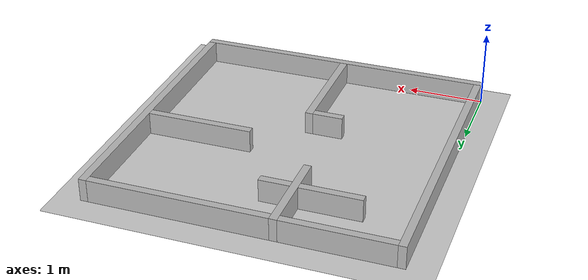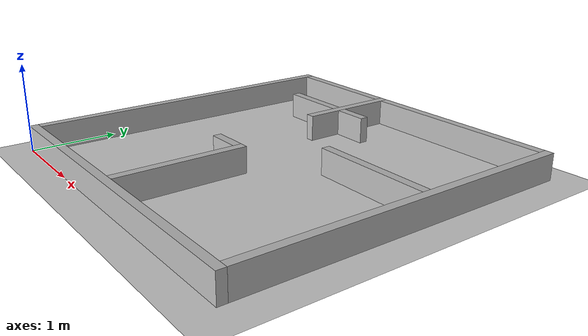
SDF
<sdf version="1.7"><world name="default"><gui><camera name="top_down_camera"><pose>7 -20 20 0 0.6435 1.56</pose><view_controller>ortho</view_controller></camera></gui><light name="sun" type="directional"><cast_shadows>1</cast_shadows><pose>0 0 10 0 -0 0</pose><diffuse>0.8 0.8 0.8 1</diffuse><specular>0.2 0.2 0.2 1</specular><attenuation><range>1000</range><constant>0.9</constant><linear>0.01</linear><quadratic>0.001</quadratic></attenuation><direction>-0.5 0.1 -0.9</direction><spot><inner_angle>0</inner_angle><outer_angle>0</outer_angle><falloff>0</falloff></spot></light><model name="ground_plane"><static>1</static><pose>0 0 0 0 0 0</pose><link name="link"><collision name="collision"><geometry><plane><normal>0 0 1</normal><size>1000 1000</size></plane></geometry><surface><friction><ode><mu>100</mu><mu2>50</mu2></ode></friction></surface><max_contacts>10</max_contacts></collision><visual name="visual"><cast_shadows>0</cast_shadows><geometry><plane><normal>0 0 1</normal><size>1000 1000</size></plane></geometry><material><script><uri>file://media/materials/scripts/gazebo.material</uri><name>Gazebo/Grey</name></script></material></visual><self_collide>0</self_collide><enable_wind>0</enable_wind><kinematic>0</kinematic></link></model><gravity>0 0 -9.8</gravity><magnetic_field>6e-06 2.3e-05 -4.2e-05</magnetic_field><atmosphere type="adiabatic" /><physics type="ode"><max_step_size>0.001</max_step_size><real_time_factor>1</real_time_factor><real_time_update_rate>1000</real_time_update_rate></physics><scene><ambient>0.4 0.4 0.4 1</ambient><background>0.7 0.7 0.7 1</background><shadows>1</shadows></scene><spherical_coordinates><surface_model>EARTH_WGS84</surface_model><latitude_deg>0</latitude_deg><elevation>0</elevation><heading_deg>0</heading_deg></spherical_coordinates><model name="block_0_0"><pose>2.0 0.05 0.15000000000000002 0 0 0</pose><link name="link"><collision name="collision"><geometry><box><size>4.0 0.1 0.30000000000000004</size></box></geometry></collision><visual name="visual"><geometry><box><size>4.0 0.1 0.30000000000000004</size></box></geometry></visual></link></model><model name="block_0_1"><pose>0.05 2.0500000000000003 0.15000000000000002 0 0 0</pose><link name="link"><collision name="collision"><geometry><box><size>0.1 3.9000000000000004 0.30000000000000004</size></box></geometry></collision><visual name="visual"><geometry><box><size>0.1 3.9000000000000004 0.30000000000000004</size></box></geometry></visual></link></model><model name="block_19_1"><pose>1.9500000000000002 0.8500000000000001 0.15000000000000002 0 0 0</pose><link name="link"><collision name="collision"><geometry><box><size>0.1 1.5 0.30000000000000004</size></box></geometry></collision><visual name="visual"><geometry><box><size>0.1 1.5 0.30000000000000004</size></box></geometry></visual></link></model><model name="block_39_1"><pose>3.95 2.0500000000000003 0.15000000000000002 0 0 0</pose><link name="link"><collision name="collision"><geometry><box><size>0.1 3.9000000000000004 0.30000000000000004</size></box></geometry></collision><visual name="visual"><geometry><box><size>0.1 3.9000000000000004 0.30000000000000004</size></box></geometry></visual></link></model><model name="block_15_15"><pose>1.7000000000000002 1.55 0.15000000000000002 0 0 0</pose><link name="link"><collision name="collision"><geometry><box><size>0.4 0.1 0.30000000000000004</size></box></geometry></collision><visual name="visual"><geometry><box><size>0.4 0.1 0.30000000000000004</size></box></geometry></visual></link></model><model name="block_25_22"><pose>3.2 2.25 0.15000000000000002 0 0 0</pose><link name="link"><collision name="collision"><geometry><box><size>1.4000000000000001 0.1 0.30000000000000004</size></box></geometry></collision><visual name="visual"><geometry><box><size>1.4000000000000001 0.1 0.30000000000000004</size></box></geometry></visual></link></model><model name="block_15_28"><pose>1.55 3.4000000000000004 0.15000000000000002 0 0 0</pose><link name="link"><collision name="collision"><geometry><box><size>0.1 1.2000000000000002 0.30000000000000004</size></box></geometry></collision><visual name="visual"><geometry><box><size>0.1 1.2000000000000002 0.30000000000000004</size></box></geometry></visual></link></model><model name="block_7_32"><pose>1.1 3.25 0.15000000000000002 0 0 0</pose><link name="link"><collision name="collision"><geometry><box><size>0.8 0.1 0.30000000000000004</size></box></geometry></collision><visual name="visual"><geometry><box><size>0.8 0.1 0.30000000000000004</size></box></geometry></visual></link></model><model name="block_16_32"><pose>1.8 3.25 0.15000000000000002 0 0 0</pose><link name="link"><collision name="collision"><geometry><box><size>0.4 0.1 0.30000000000000004</size></box></geometry></collision><visual name="visual"><geometry><box><size>0.4 0.1 0.30000000000000004</size></box></geometry></visual></link></model><model name="block_1_39"><pose>0.8 3.95 0.15000000000000002 0 0 0</pose><link name="link"><collision name="collision"><geometry><box><size>1.4000000000000001 0.1 0.30000000000000004</size></box></geometry></collision><visual name="visual"><geometry><box><size>1.4000000000000001 0.1 0.30000000000000004</size></box></geometry></visual></link></model><model name="block_16_39"><pose>2.75 3.95 0.15000000000000002 0 0 0</pose><link name="link"><collision name="collision"><geometry><box><size>2.3000000000000003 0.1 0.30000000000000004</size></box></geometry></collision><visual name="visual"><geometry><box><size>2.3000000000000003 0.1 0.30000000000000004</size></box></geometry></visual></link></model></world></sdf>
